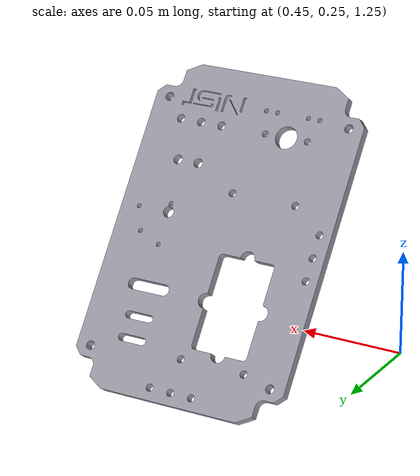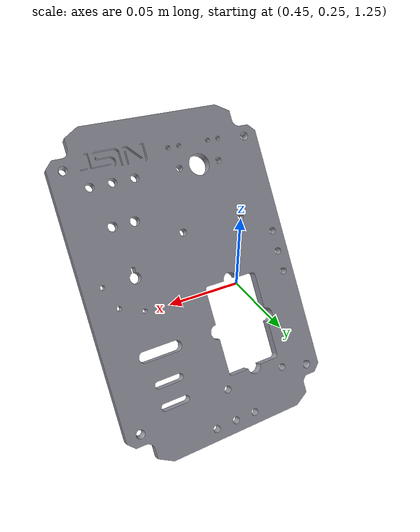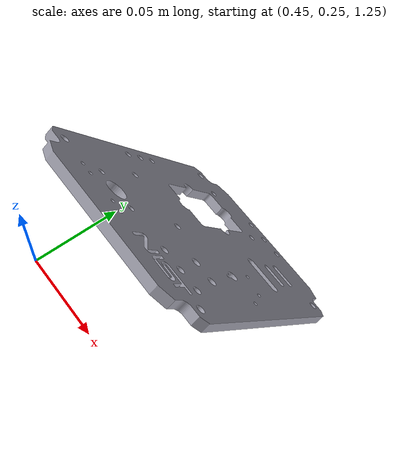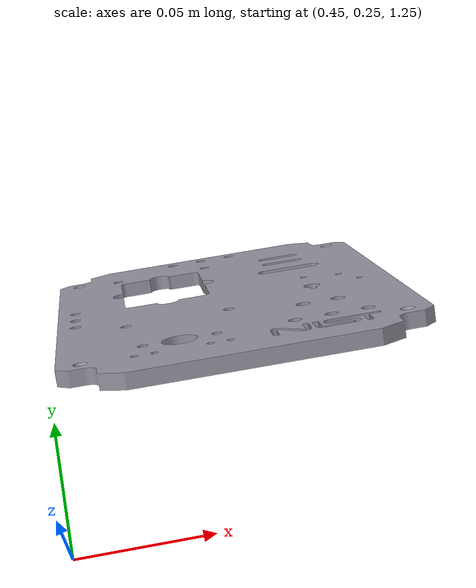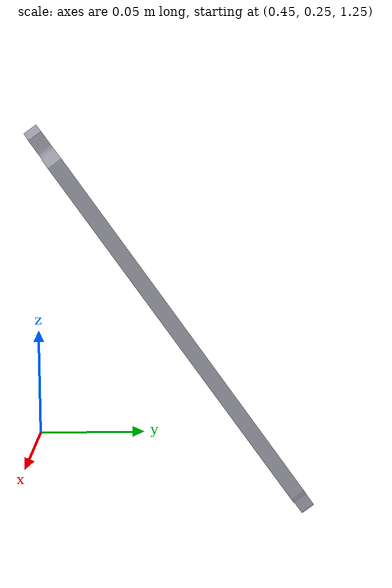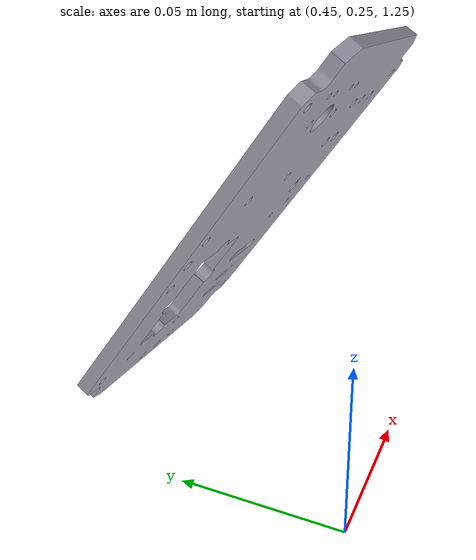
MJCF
<mujoco model="nist_layer">
  <asset>
    <material name="steel_visual_nist_layer" rgba="0.6 0.6 0.65 1.0" specular="0.8" shininess="0.9" reflectance="0.6"/>
    <material name="steel_nist_layer" rgba="0.6 0.6 0.65 0.0" specular="0.8" shininess="0.9" reflectance="0.6"/>
    <mesh name="nist_layer" file="../objects/bigym/nist_misc/nist_ftc_09_layer.STL" scale="0.00055 0.00055 0.00055"/>
    <mesh name="nist_layer_updated" file="../objects/bigym/nist_misc/nist_ftc_09_layer.STL" scale="0.00055 0.00155 0.00055"/>
  </asset>

  <default class="main">
    <default class="nist_layer">
      <default class="nist_layer_visual">
        <geom type="mesh" contype="0" conaffinity="0" group="2"/>
      </default>
      <default class="nist_layer_collision">
        <geom type="mesh" group="3" solref="0.00001 1" solimp="2 2 0.001" condim="6" />
      </default>
    </default>
  </default>

  <worldbody>
    <body name="nist_layer" pos="0.46 0.35 1.25" quat="0.92 0.3 0 0">
      <freejoint/>
      <geom class="nist_layer_visual" mesh="nist_layer_updated"
            material="steel_visual_nist_layer" mass="2"/>
      <geom class="nist_layer_collision" mesh="nist_layer_updated"
            material="steel_nist_layer" friction="1 0.8 0.1" />
    </body>
  </worldbody>
</mujoco>
